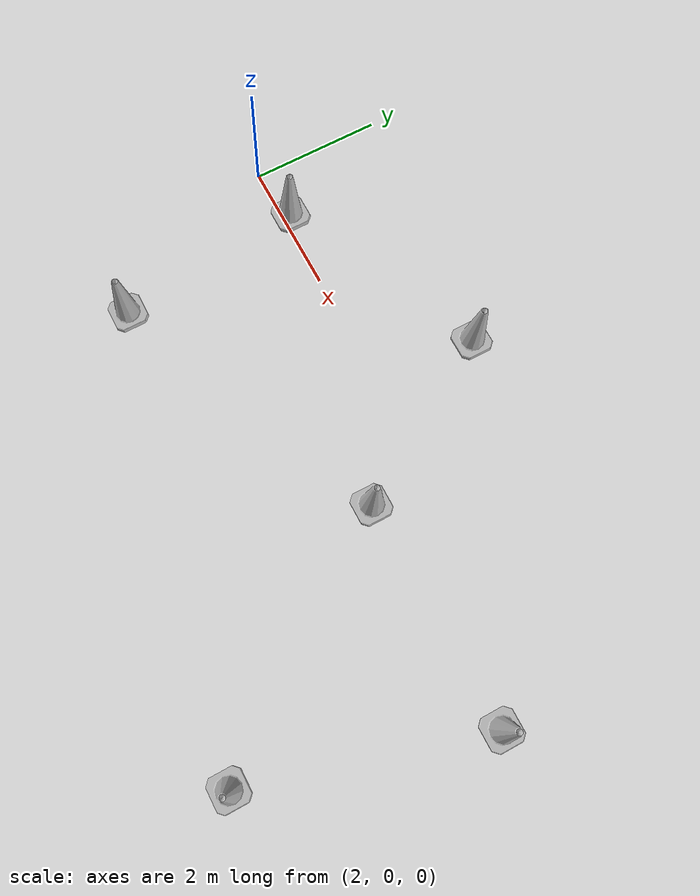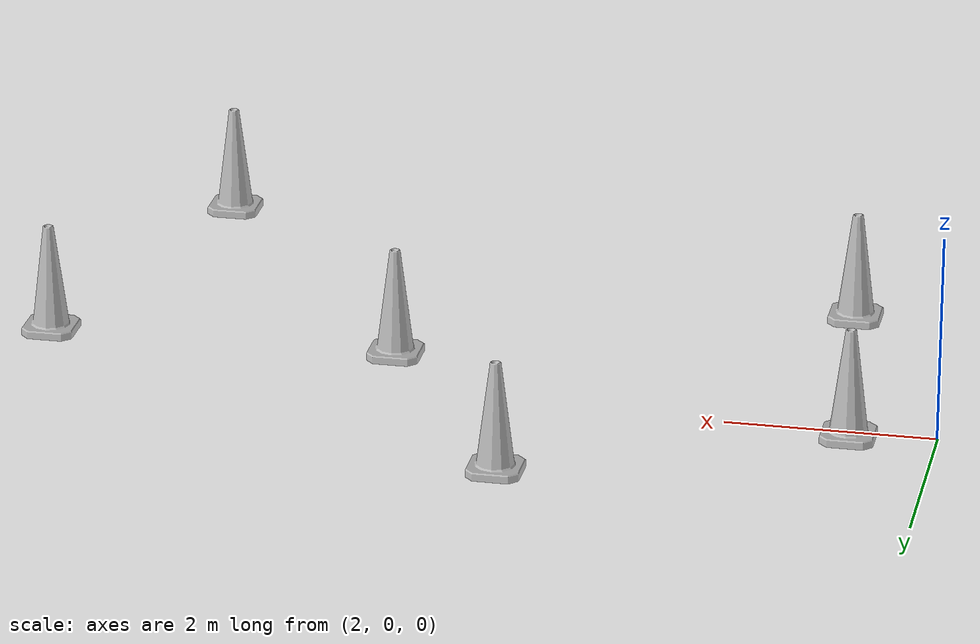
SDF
<sdf version="1.6">
 <model name="RaceTrack1">
  <link name="link_clone_0">
   <inertial>
    <inertia><ixx>1</ixx><ixy>0</ixy><ixz>0</ixz><iyy>1</iyy><iyz>0</iyz><izz>1</izz></inertia>
    <mass>1</mass>
   </inertial>
   <pose>2.81644 0.127499 -2e-06 0 1e-06 0</pose>
   <visual name="visual">
    <geometry>
     <mesh><scale>10 10 10</scale><uri>model://construction_cone/meshes/construction_cone.dae</uri></mesh>
    </geometry>
    <material><shader type="vertex"><normal_map>__default__</normal_map></shader></material>
   </visual>
   <collision name="collision">
    <geometry>
     <mesh><uri>model://construction_cone/meshes/construction_cone.dae</uri><scale>10 10 10</scale></mesh>
    </geometry>
    <surface>
     <friction>
      <ode><mu>1</mu><mu2>1</mu2><fdir1>0 0 0</fdir1><slip1>0</slip1><slip2>0</slip2></ode>
      <torsional>
       <coefficient>1</coefficient>
       <patch_radius>0</patch_radius>
       <surface_radius>0</surface_radius>
       <use_patch_radius>1</use_patch_radius>
       <ode><slip>0</slip></ode>
      </torsional>
     </friction>
     <bounce><restitution_coefficient>0</restitution_coefficient><threshold>1e+06</threshold></bounce>
     <contact>
      <collide_without_contact>0</collide_without_contact>
      <collide_without_contact_bitmask>1</collide_without_contact_bitmask>
      <collide_bitmask>1</collide_bitmask>
      <ode>
       <soft_cfm>0</soft_cfm>
       <soft_erp>0.2</soft_erp>
       <kp>1e+13</kp>
       <kd>1</kd>
       <max_vel>0.01</max_vel>
       <min_depth>0</min_depth>
      </ode>
      <bullet>
       <split_impulse>1</split_impulse>
       <split_impulse_penetration_threshold>-0.01</split_impulse_penetration_threshold>
       <soft_cfm>0</soft_cfm>
       <soft_erp>0.2</soft_erp>
       <kp>1e+13</kp>
       <kd>1</kd>
      </bullet>
     </contact>
    </surface>
   </collision>
  </link>
  <link name="link_clone_1">
   <inertial>
    <inertia><ixx>1</ixx><ixy>0</ixy><ixz>0</ixz><iyy>1</iyy><iyz>0</iyz><izz>1</izz></inertia>
    <mass>1</mass>
   </inertial>
   <pose>3.1463 -2.74637 -2e-06 0 1e-06 0</pose>
   <visual name="visual">
    <geometry>
     <mesh><scale>10 10 10</scale><uri>model://construction_cone/meshes/construction_cone.dae</uri></mesh>
    </geometry>
    <material><shader type="vertex"><normal_map>__default__</normal_map></shader></material>
   </visual>
   <collision name="collision">
    <geometry>
     <mesh><uri>model://construction_cone/meshes/construction_cone.dae</uri><scale>10 10 10</scale></mesh>
    </geometry>
    <surface>
     <friction>
      <ode><mu>1</mu><mu2>1</mu2><fdir1>0 0 0</fdir1><slip1>0</slip1><slip2>0</slip2></ode>
      <torsional>
       <coefficient>1</coefficient>
       <patch_radius>0</patch_radius>
       <surface_radius>0</surface_radius>
       <use_patch_radius>1</use_patch_radius>
       <ode><slip>0</slip></ode>
      </torsional>
     </friction>
     <bounce><restitution_coefficient>0</restitution_coefficient><threshold>1e+06</threshold></bounce>
     <contact>
      <collide_without_contact>0</collide_without_contact>
      <collide_without_contact_bitmask>1</collide_without_contact_bitmask>
      <collide_bitmask>1</collide_bitmask>
      <ode>
       <soft_cfm>0</soft_cfm>
       <soft_erp>0.2</soft_erp>
       <kp>1e+13</kp>
       <kd>1</kd>
       <max_vel>0.01</max_vel>
       <min_depth>0</min_depth>
      </ode>
      <bullet>
       <split_impulse>1</split_impulse>
       <split_impulse_penetration_threshold>-0.01</split_impulse_penetration_threshold>
       <soft_cfm>0</soft_cfm>
       <soft_erp>0.2</soft_erp>
       <kp>1e+13</kp>
       <kd>1</kd>
      </bullet>
     </contact>
    </surface>
   </collision>
  </link>
  <link name="link_clone_2">
   <inertial>
    <inertia><ixx>1</ixx><ixy>0</ixy><ixz>0</ixz><iyy>1</iyy><iyz>0</iyz><izz>1</izz></inertia>
    <mass>1</mass>
   </inertial>
   <pose>5.87817 1.52613 -3e-06 0 1e-06 0</pose>
   <visual name="visual">
    <geometry>
     <mesh><scale>10 10 10</scale><uri>model://construction_cone/meshes/construction_cone.dae</uri></mesh>
    </geometry>
    <material><shader type="vertex"><normal_map>__default__</normal_map></shader></material>
   </visual>
   <collision name="collision">
    <geometry>
     <mesh><uri>model://construction_cone/meshes/construction_cone.dae</uri><scale>10 10 10</scale></mesh>
    </geometry>
    <surface>
     <friction>
      <ode><mu>1</mu><mu2>1</mu2><fdir1>0 0 0</fdir1><slip1>0</slip1><slip2>0</slip2></ode>
      <torsional>
       <coefficient>1</coefficient>
       <patch_radius>0</patch_radius>
       <surface_radius>0</surface_radius>
       <use_patch_radius>1</use_patch_radius>
       <ode><slip>0</slip></ode>
      </torsional>
     </friction>
     <bounce><restitution_coefficient>0</restitution_coefficient><threshold>1e+06</threshold></bounce>
     <contact>
      <collide_without_contact>0</collide_without_contact>
      <collide_without_contact_bitmask>1</collide_without_contact_bitmask>
      <collide_bitmask>1</collide_bitmask>
      <ode>
       <soft_cfm>0</soft_cfm>
       <soft_erp>0.2</soft_erp>
       <kp>1e+13</kp>
       <kd>1</kd>
       <max_vel>0.01</max_vel>
       <min_depth>0</min_depth>
      </ode>
      <bullet>
       <split_impulse>1</split_impulse>
       <split_impulse_penetration_threshold>-0.01</split_impulse_penetration_threshold>
       <soft_cfm>0</soft_cfm>
       <soft_erp>0.2</soft_erp>
       <kp>1e+13</kp>
       <kd>1</kd>
      </bullet>
     </contact>
    </surface>
   </collision>
  </link>
  <link name="link_clone_27">
   <inertial>
    <inertia><ixx>1</ixx><ixy>0</ixy><ixz>0</ixz><iyy>1</iyy><iyz>0</iyz><izz>1</izz></inertia>
    <mass>1</mass>
   </inertial>
   <pose>10.7596 -0.897168 -6e-06 0 1e-06 0</pose>
   <visual name="visual">
    <geometry>
     <mesh><scale>10 10 10</scale><uri>model://construction_cone/meshes/construction_cone.dae</uri></mesh>
    </geometry>
    <material><shader type="vertex"><normal_map>__default__</normal_map></shader></material>
   </visual>
   <collision name="collision">
    <geometry>
     <mesh><uri>model://construction_cone/meshes/construction_cone.dae</uri><scale>10 10 10</scale></mesh>
    </geometry>
    <surface>
     <friction>
      <ode><mu>1</mu><mu2>1</mu2><fdir1>0 0 0</fdir1><slip1>0</slip1><slip2>0</slip2></ode>
      <torsional>
       <coefficient>1</coefficient>
       <patch_radius>0</patch_radius>
       <surface_radius>0</surface_radius>
       <use_patch_radius>1</use_patch_radius>
       <ode><slip>0</slip></ode>
      </torsional>
     </friction>
     <bounce><restitution_coefficient>0</restitution_coefficient><threshold>1e+06</threshold></bounce>
     <contact>
      <collide_without_contact>0</collide_without_contact>
      <collide_without_contact_bitmask>1</collide_without_contact_bitmask>
      <collide_bitmask>1</collide_bitmask>
      <ode>
       <soft_cfm>0</soft_cfm>
       <soft_erp>0.2</soft_erp>
       <kp>1e+13</kp>
       <kd>1</kd>
       <max_vel>0.01</max_vel>
       <min_depth>0</min_depth>
      </ode>
      <bullet>
       <split_impulse>1</split_impulse>
       <split_impulse_penetration_threshold>-0.01</split_impulse_penetration_threshold>
       <soft_cfm>0</soft_cfm>
       <soft_erp>0.2</soft_erp>
       <kp>1e+13</kp>
       <kd>1</kd>
      </bullet>
     </contact>
    </surface>
   </collision>
  </link>
  <link name="link_clone_29">
   <inertial>
    <inertia><ixx>1</ixx><ixy>0</ixy><ixz>0</ixz><iyy>1</iyy><iyz>0</iyz><izz>1</izz></inertia>
    <mass>1</mass>
   </inertial>
   <pose>9.76696 -4.37154 -6e-06 0 1e-06 0</pose>
   <visual name="visual">
    <geometry>
     <mesh><scale>10 10 10</scale><uri>model://construction_cone/meshes/construction_cone.dae</uri></mesh>
    </geometry>
    <material><shader type="vertex"><normal_map>__default__</normal_map></shader></material>
   </visual>
   <collision name="collision">
    <geometry>
     <mesh><uri>model://construction_cone/meshes/construction_cone.dae</uri><scale>10 10 10</scale></mesh>
    </geometry>
    <surface>
     <friction>
      <ode><mu>1</mu><mu2>1</mu2><fdir1>0 0 0</fdir1><slip1>0</slip1><slip2>0</slip2></ode>
      <torsional>
       <coefficient>1</coefficient>
       <patch_radius>0</patch_radius>
       <surface_radius>0</surface_radius>
       <use_patch_radius>1</use_patch_radius>
       <ode><slip>0</slip></ode>
      </torsional>
     </friction>
     <bounce><restitution_coefficient>0</restitution_coefficient><threshold>1e+06</threshold></bounce>
     <contact>
      <collide_without_contact>0</collide_without_contact>
      <collide_without_contact_bitmask>1</collide_without_contact_bitmask>
      <collide_bitmask>1</collide_bitmask>
      <ode>
       <soft_cfm>0</soft_cfm>
       <soft_erp>0.2</soft_erp>
       <kp>1e+13</kp>
       <kd>1</kd>
       <max_vel>0.01</max_vel>
       <min_depth>0</min_depth>
      </ode>
      <bullet>
       <split_impulse>1</split_impulse>
       <split_impulse_penetration_threshold>-0.01</split_impulse_penetration_threshold>
       <soft_cfm>0</soft_cfm>
       <soft_erp>0.2</soft_erp>
       <kp>1e+13</kp>
       <kd>1</kd>
      </bullet>
     </contact>
    </surface>
   </collision>
  </link>
  <link name="link_clone_3">
   <inertial>
    <inertia><ixx>1</ixx><ixy>0</ixy><ixz>0</ixz><iyy>1</iyy><iyz>0</iyz><izz>1</izz></inertia>
    <mass>1</mass>
   </inertial>
   <pose>7.35257 -0.960422 -4e-06 0 1e-06 0</pose>
   <visual name="visual">
    <geometry>
     <mesh><scale>10 10 10</scale><uri>model://construction_cone/meshes/construction_cone.dae</uri></mesh>
    </geometry>
    <material><shader type="vertex"><normal_map>__default__</normal_map></shader></material>
   </visual>
   <collision name="collision">
    <geometry>
     <mesh><uri>model://construction_cone/meshes/construction_cone.dae</uri><scale>10 10 10</scale></mesh>
    </geometry>
    <surface>
     <friction>
      <ode><mu>1</mu><mu2>1</mu2><fdir1>0 0 0</fdir1><slip1>0</slip1><slip2>0</slip2></ode>
      <torsional>
       <coefficient>1</coefficient>
       <patch_radius>0</patch_radius>
       <surface_radius>0</surface_radius>
       <use_patch_radius>1</use_patch_radius>
       <ode><slip>0</slip></ode>
      </torsional>
     </friction>
     <bounce><restitution_coefficient>0</restitution_coefficient><threshold>1e+06</threshold></bounce>
     <contact>
      <collide_without_contact>0</collide_without_contact>
      <collide_without_contact_bitmask>1</collide_without_contact_bitmask>
      <collide_bitmask>1</collide_bitmask>
      <ode>
       <soft_cfm>0</soft_cfm>
       <soft_erp>0.2</soft_erp>
       <kp>1e+13</kp>
       <kd>1</kd>
       <max_vel>0.01</max_vel>
       <min_depth>0</min_depth>
      </ode>
      <bullet>
       <split_impulse>1</split_impulse>
       <split_impulse_penetration_threshold>-0.01</split_impulse_penetration_threshold>
       <soft_cfm>0</soft_cfm>
       <soft_erp>0.2</soft_erp>
       <kp>1e+13</kp>
       <kd>1</kd>
      </bullet>
     </contact>
    </surface>
   </collision>
  </link>
  <static>1</static>
 </model>
</sdf>
